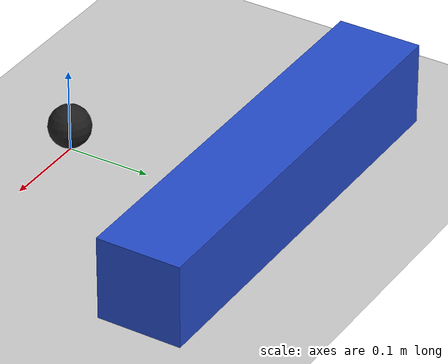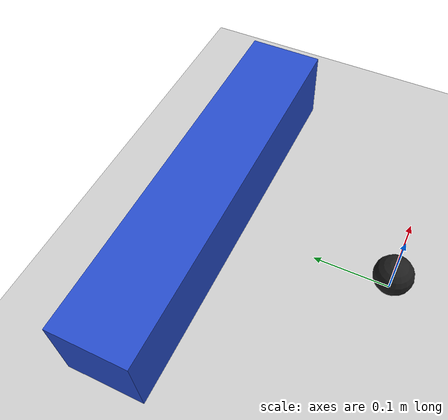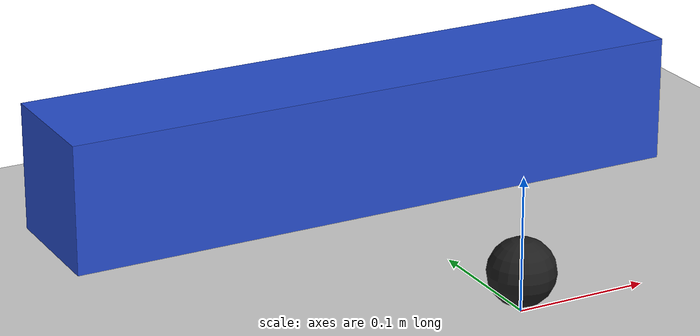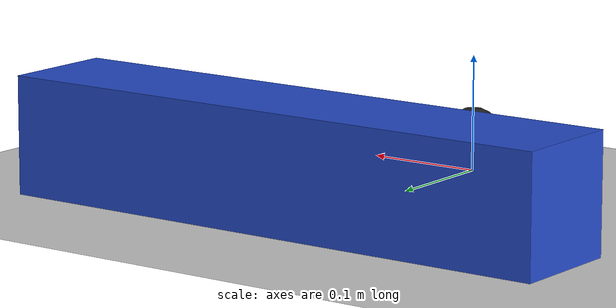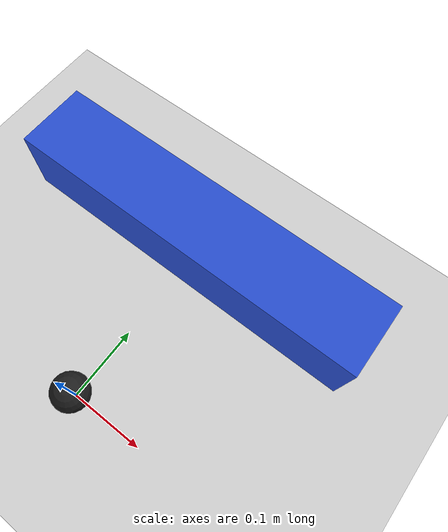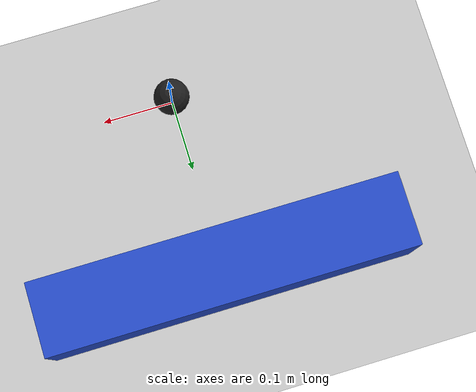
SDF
<sdf version='1.4'>
  <world name='default'>
    <physics type="ode">
        <gravity>0 0 -9.81</gravity>
        <max_step_size>0.001</max_step_size>
        <real_time_factor>0.1</real_time_factor>
        <real_time_update_rate>500</real_time_update_rate>
    </physics>
    <plugin name="actuatorPlugin" filename="libactuatorPluginWorld.so"/>
    <include>
      <uri>model://ground_plane</uri>
    </include>
    <include>
      <uri>model://sun</uri>
    </include>
    <model name='actuator'>
      <pose>0.0 0.0 0.03 0 0 0</pose>
      <link name='finger'>
        <inertial>
          <mass>10</mass>
          <inertia>
            <ixx>2.5e-04</ixx>
            <ixy>0</ixy>
            <ixz>0</ixz>
            <iyy>2.5e-04</iyy>
            <iyz>0</iyz>
            <izz>2.5e-04</izz>
          </inertia>
        </inertial>
        <collision name='collision'>
     <surface>
      <friction>
       <ode>
        <mu>0.01</mu>
        <mu2>0.01</mu2>
        <fdir1>0.000000 0.000000 0.000000</fdir1>
        <slip1>0.000000</slip1>
        <slip2>0.000000</slip2>
       </ode>
      </friction>
     </surface>
          <geometry>
            <sphere>
              <radius>0.025</radius>
            </sphere>
          </geometry>
        </collision>
        <visual name='visual'>
          <geometry>
            <sphere>
              <radius>0.025</radius>
            </sphere>
          </geometry>
          <material>
            <script>
              <uri>file://media/materials/scripts/gazebo.material</uri>
              <name>Gazebo/Black</name>
            </script>
          </material>
        </visual>
        <gravity>0</gravity>
        <sensor name='actuatorContact' type='contact'>
          <contact>
            <collision>collision</collision>
          </contact>
        <update_rate>100.0</update_rate>
        </sensor>
      </link>
      <static>0</static>
    </model>
    <model name='blockA'>
      <pose>-0.0 0.25 0.05 0 0 0</pose>
      <link name='link'>
        <inertial>
          <mass>1</mass>
         <inertia>
            <ixx>1.66667e-03</ixx>
            <ixy>0</ixy>
            <ixz>0</ixz>
            <iyy>0.0216667</iyy>
            <iyz>0</iyz>
            <izz>0.0216667</izz>
          </inertia>
        </inertial>
        <collision name='collision'>
          <geometry>
            <box>
              <size>0.5 0.1 0.1</size>
            </box>
          </geometry>
          <surface>
              <friction>
               <ode>
                <mu>0.9</mu>
                <mu2>0.9</mu2>
                <fdir1>0.000000 0.000000 0.000000</fdir1>
                <slip1>0.000000</slip1>
                <slip2>0.000000</slip2>
               </ode>
              </friction>
         </surface>
          <max_contacts>10</max_contacts>
        </collision>
        <visual name='visual'>
          <geometry>
            <box>
              <size>0.5 0.1 0.1</size>
            </box>
          </geometry>
          <material>
            <script>
              <uri>file://media/materials/scripts/gazebo.material</uri>
              <name>Gazebo/Blue</name>
            </script>
          </material>
        </visual>
      </link>
      <static>0</static>
    </model>
     <model name='actuatorShadow'>
      <pose>0.0 0.0 0.03 0 0 0</pose>
      <link name='finger'>
        <visual name='visual'>
          <geometry>
            <sphere>
              <radius>0.025</radius>
            </sphere>
          </geometry>
          <material>
            <script>
              <uri>file://media/materials/scripts/gazebo.material</uri>
              <name>Gazebo/GreyTransparent</name>
            </script>
          </material>
        </visual>
        <gravity>0</gravity>
      </link>
      <static>0</static>
    </model>
        <model name='blockAShadow'>
      <pose>-0.0 0.25 0.05 0 0 0</pose>
      <link name='link'>
        <visual name='visual'>
          <geometry>
            <box>
              <size>0.5 0.1 0.1</size>
            </box>
          </geometry>
          <material>
            <script>
              <uri>file://media/materials/scripts/gazebo.material</uri>
              <name>Gazebo/BlueTransparent</name>
            </script>
          </material>
        </visual>
        <gravity>0</gravity>
      </link>
      <static>0</static>
    </model>
  </world>
</sdf>
